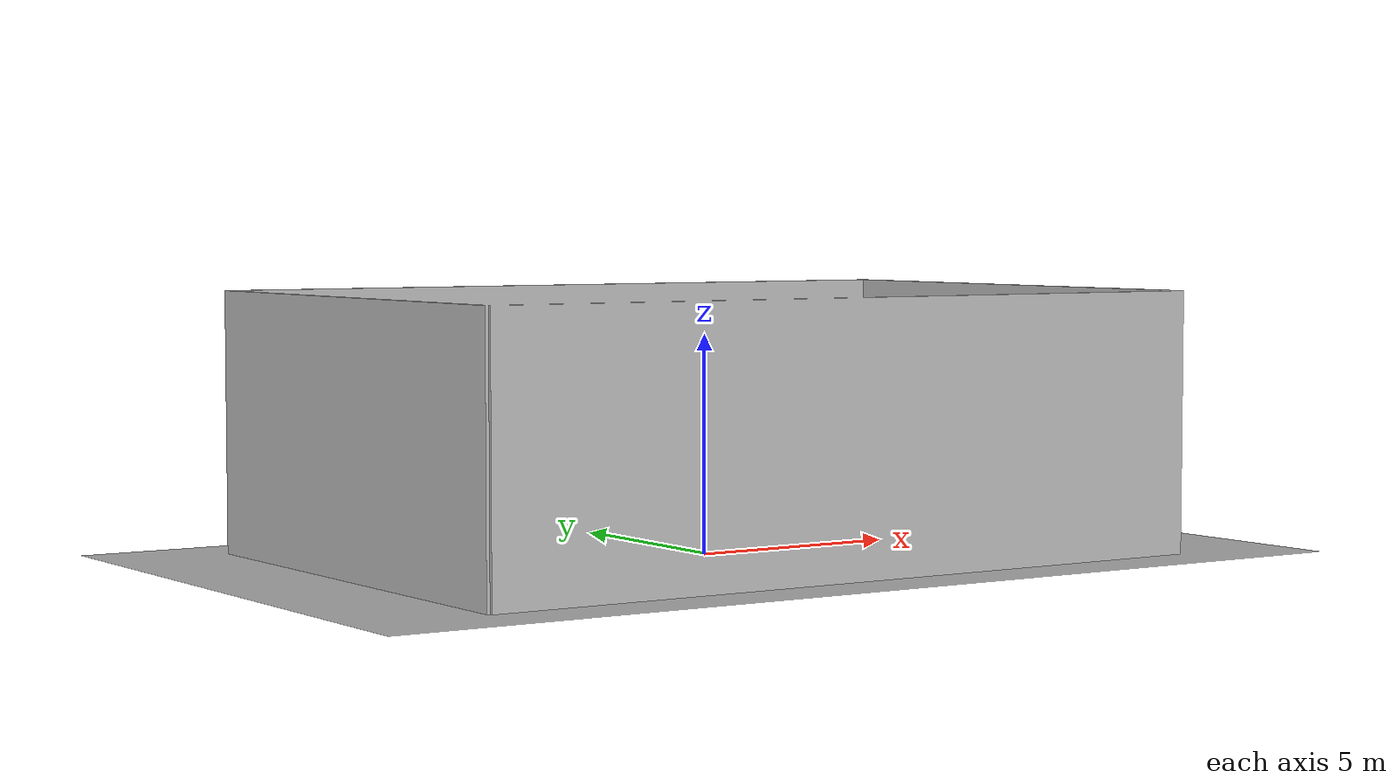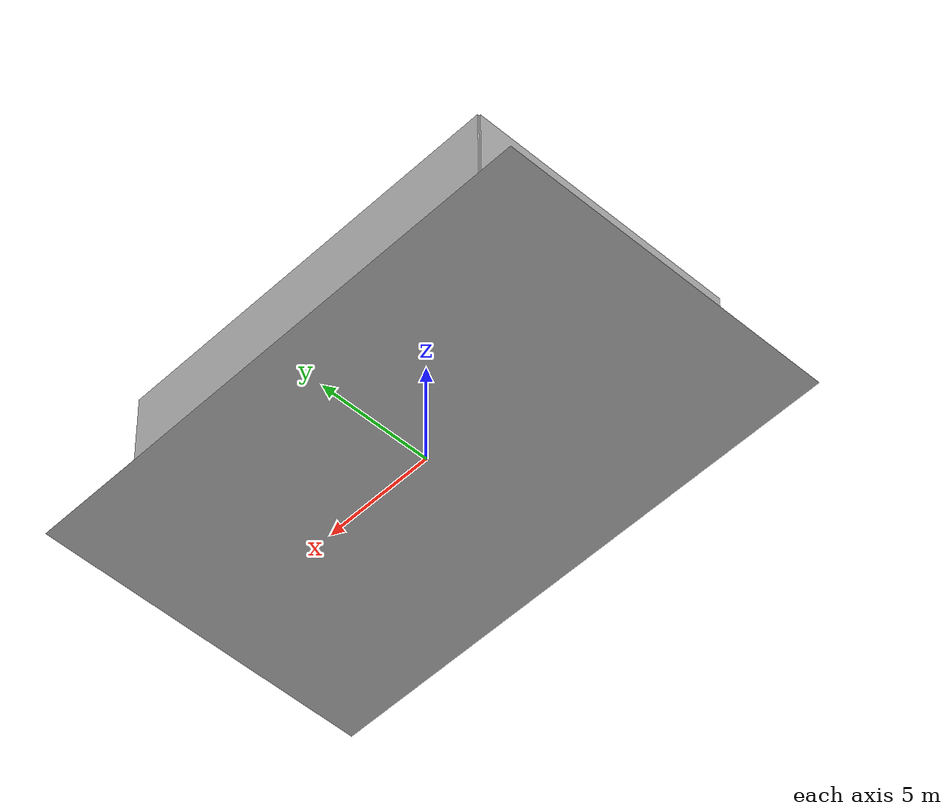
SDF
<?xml version='1.0'?>
<sdf version='1.6'>
  <model name="ssh_testbed">
    <static>true</static>
    <link name="link">
      <collision name="collision">
        <geometry>
          <mesh>
            <uri>model://ssh/meshes/ssh.dae</uri>
          </mesh>
        </geometry>
      </collision>
      <visual name="visual">
        <geometry>
          <mesh>
            <uri>model://ssh/meshes/ssh.dae</uri>
          </mesh>
        </geometry>
      </visual>
    </link>
  </model>
</sdf>
